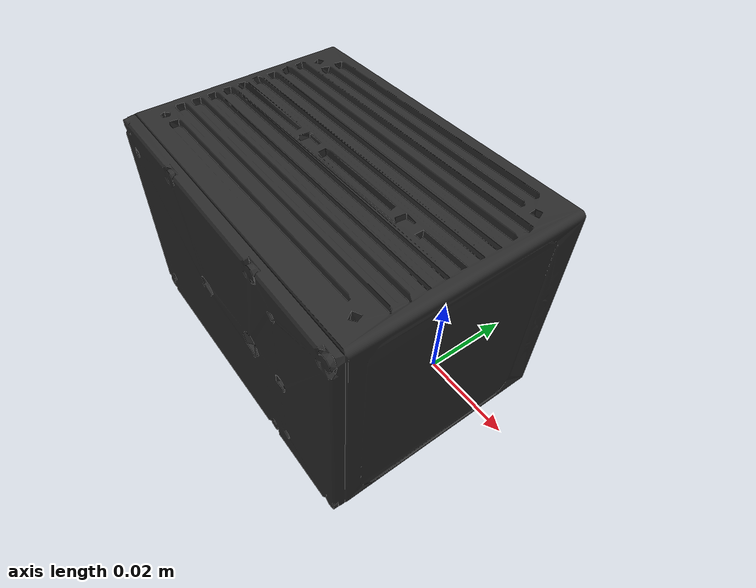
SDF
<?xml version="1.0" encoding="UTF-8"?>
<sdf version="1.9">
  <model name="livox_avia">
    <self_collide>false</self_collide>
    <static>false</static>

    <link name="livox_avia_link">
      <gravity>true</gravity>
      <inertial>
        <pose>-0.041135035 0.000000276 -0.000000340 0.072773679 -1.395368869 -0.073903923</pose>
        <mass>0.498</mass>
        <inertia>
          <ixx>0.000486</ixx><iyy>0.000690</iyy><izz>0.000503</izz>
          <ixy>0</ixy><ixz>0</ixz><iyz>0</iyz>
        </inertia>
      </inertial>
      <collision name="housing_collision">
        <pose>-0.041135035 0.000000276 -0.000000340 0.072773679 -1.395368869 -0.073903923</pose>
        <geometry><box><size>0.0883 0.0649 0.0998</size></box></geometry>
      </collision>
      <visual name="housing_visual">
        <pose>-0.041135035 0.000000276 -0.000000340 0.072773679 -1.395368869 -0.073903923</pose>
        <cast_shadows>true</cast_shadows>
        <geometry><mesh><uri>model://livox_avia/meshes/livox_avia.stl</uri></mesh></geometry>
        <material>
          <ambient>0.10 0.10 0.10 1</ambient>
          <diffuse>0.16 0.16 0.16 1</diffuse>
          <specular>0.25 0.25 0.25 1</specular>
        </material>
      </visual>

      <sensor name="nonrepetitive" type="gpu_lidar">
        <topic>/livox_avia/nonrepetitive/scan</topic>
        <always_on>false</always_on>
        <update_rate>10</update_rate>
        <visualize>true</visualize>
        <ray>
          <scan>
            <horizontal>
              <samples>352</samples><resolution>1</resolution>
              <min_angle>-0.614355897</min_angle><max_angle>0.614355897</max_angle>
            </horizontal>
            <vertical>
              <samples>386</samples><resolution>1</resolution>
              <min_angle>-0.673697091</min_angle><max_angle>0.673697091</max_angle>
            </vertical>
          </scan>
          <!-- 190 m is the guaranteed daylight range at 10% reflectivity.
               Livox specifies a blind zone below 1 m and <2 cm (1 sigma)
               random range error at 20 m. -->
          <range><min>1.0</min><max>190.0</max><resolution>0.002</resolution></range>
          <noise><type>gaussian</type><mean>0</mean><stddev>0.02</stddev></noise>
        </ray>
      </sensor>

      <!-- Repetitive line mode: 70.4 x 4.5 degrees, 24k samples per 10 Hz
           cloud = the real strongest/single-return rate of 240k points/s. -->
      <sensor name="repetitive" type="gpu_lidar">
        <topic>/livox_avia/repetitive/scan</topic>
        <always_on>false</always_on>
        <update_rate>10</update_rate>
        <visualize>true</visualize>
        <ray>
          <scan>
            <horizontal>
              <samples>600</samples><resolution>1</resolution>
              <min_angle>-0.614355897</min_angle><max_angle>0.614355897</max_angle>
            </horizontal>
            <vertical>
              <samples>40</samples><resolution>1</resolution>
              <min_angle>-0.039269908</min_angle><max_angle>0.039269908</max_angle>
            </vertical>
          </scan>
          <range><min>1.0</min><max>190.0</max><resolution>0.002</resolution></range>
          <noise><type>gaussian</type><mean>0</mean><stddev>0.02</stddev></noise>
        </ray>
      </sensor>

      <!-- BMI088 IMU. Its origin is 41.65 mm behind, 23.26 mm right and
           28.40 mm above the point-cloud origin per the Avia manual. -->
      <sensor name="imu" type="imu">
        <pose>-0.04165 -0.02326 0.02840 0 0 0</pose>
        <topic>/livox_avia/imu</topic>
        <always_on>false</always_on>
        <update_rate>200</update_rate>
      </sensor>
    </link>
  </model>
</sdf>
